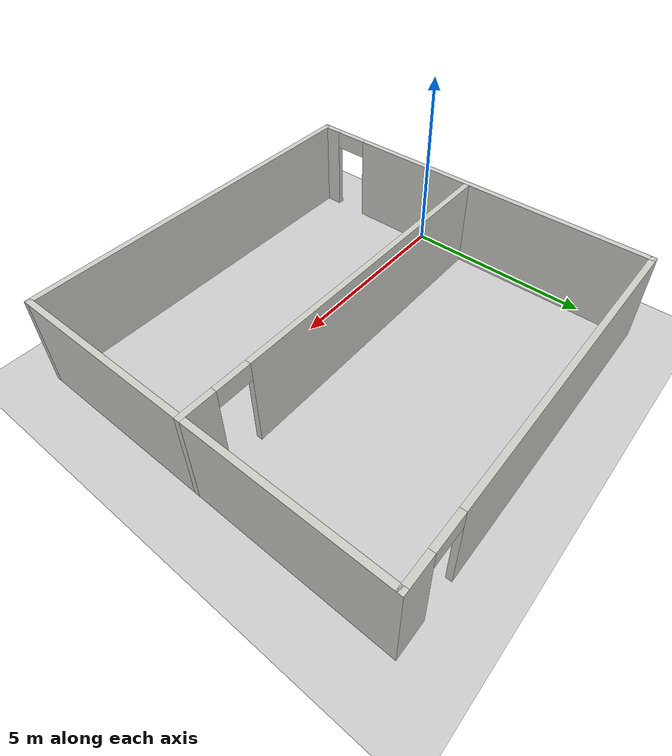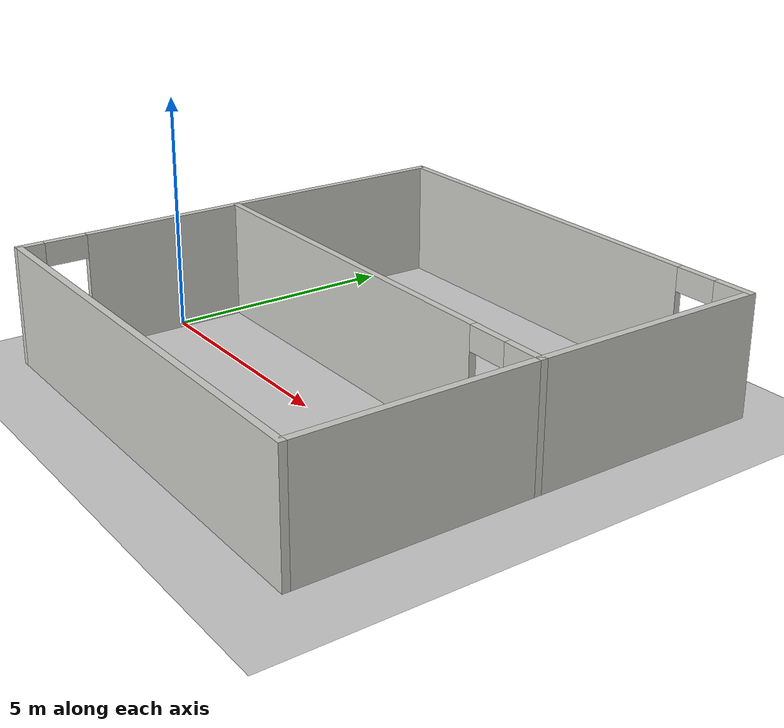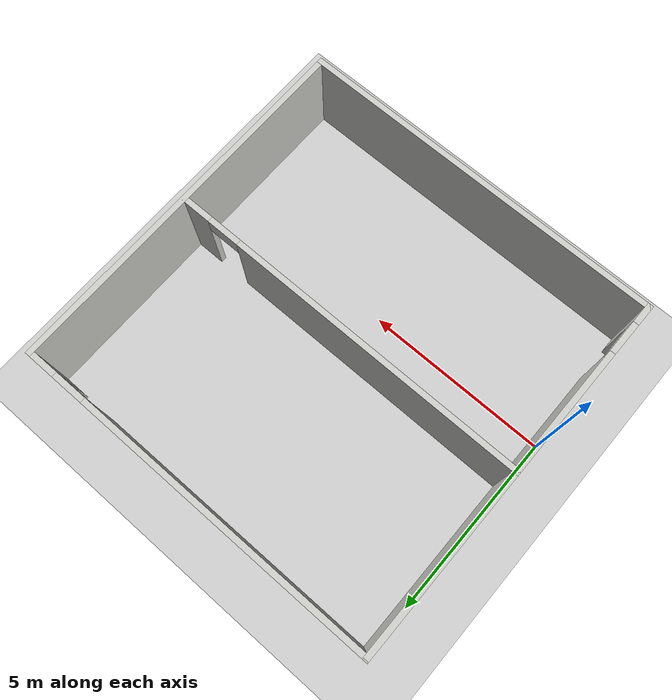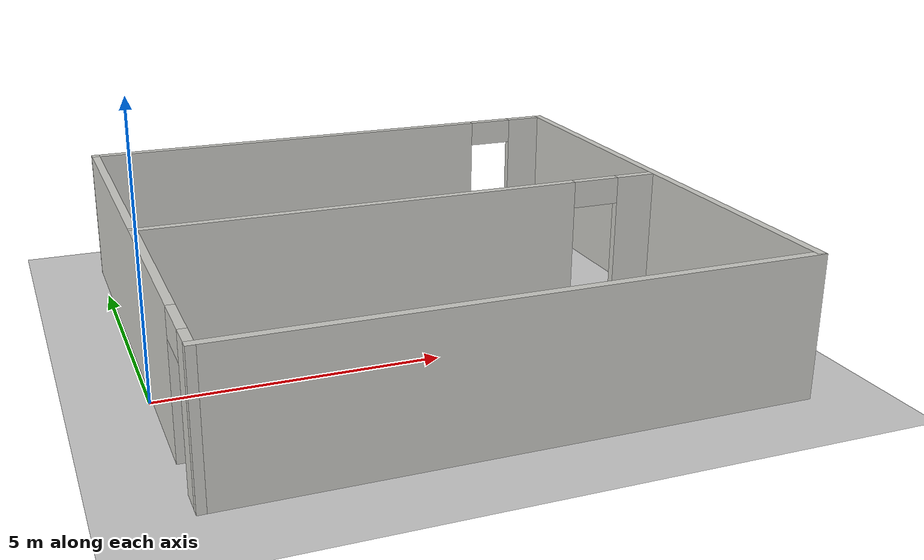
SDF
<sdf version="1.6">
 <world name="default">
  <light name="sun" type="directional">
   <pose>0 0 10 0 -0 0</pose>
   <diffuse>0.8 0.8 0.8 1</diffuse>
   <specular>0.1 0.1 0.1 1</specular>
   <attenuation>
    <range>1000</range>
    <constant>0.9</constant>
    <linear>0.01</linear>
    <quadratic>0.001</quadratic>
   </attenuation>
   <direction>-0.5 0.5 -1</direction>
  </light>
  <model name="ground_plane">
   <static>1</static>
   <link name="link">
    <collision name="collision">
     <geometry><plane><normal>0 0 1</normal><size>100 100</size></plane></geometry>
     <surface><friction><ode><mu>100</mu><mu2>50</mu2></ode></friction></surface>
    </collision>
    <visual name="visual">
     <cast_shadows>0</cast_shadows>
     <geometry><plane><normal>0 0 1</normal><size>100 100</size></plane></geometry>
     <material>
      <script><uri>file://media/materials/scripts/gazebo.material</uri><name>Gazebo/Grey</name></script>
     </material>
    </visual>
   </link>
  </model>
  <gravity>0 0 -9.8</gravity>
  <magnetic_field>6e-06 2.3e-05 -4.2e-05</magnetic_field>
  <atmosphere type="adiabatic"/>
  <physics name="default_physics" default="0" type="ode">
   <max_step_size>0.001</max_step_size>
   <real_time_factor>1</real_time_factor>
   <real_time_update_rate>1000</real_time_update_rate>
  </physics>
  <scene><ambient>0.4 0.4 0.4 1</ambient><background>0.7 0.7 0.7 1</background><shadows>1</shadows></scene>
  <spherical_coordinates>
   <surface_model>EARTH_WGS84</surface_model>
   <latitude_deg>0</latitude_deg>
   <longitude_deg>0</longitude_deg>
   <elevation>0</elevation>
   <heading_deg>0</heading_deg>
  </spherical_coordinates>
  <model name="house0">
   <pose>5.04459 1.40534 0 0 -0 0</pose>
   <link name="Wall_10">
    <pose>0.000433 -0.039574 0 0 -0 0</pose>
    <visual name="Wall_10_Visual_0">
     <pose>-0.904868 0 1.25 0 -0 0</pose>
     <geometry><box><size>8.19026 0.15 2.5</size></box></geometry>
     <material>
      <script><uri>file://media/materials/scripts/gazebo.material</uri><name>Gazebo/CeilingTiled</name></script>
      <ambient>1 1 1 1</ambient>
     </material>
    </visual>
    <collision name="Wall_10_Collision_0">
     <geometry><box><size>8.19026 0.15 2.5</size></box></geometry>
     <pose>-0.904868 0 1.25 0 -0 0</pose>
    </collision>
    <visual name="Wall_10_Visual_1">
     <pose>4.54513 0 1.25 0 -0 0</pose>
     <geometry><box><size>0.909736 0.15 2.5</size></box></geometry>
     <material>
      <script><uri>file://media/materials/scripts/gazebo.material</uri><name>Gazebo/CeilingTiled</name></script>
      <ambient>1 1 1 1</ambient>
     </material>
    </visual>
    <collision name="Wall_10_Collision_1">
     <geometry><box><size>0.909736 0.15 2.5</size></box></geometry>
     <pose>4.54513 0 1.25 0 -0 0</pose>
    </collision>
    <visual name="Wall_10_Visual_2">
     <pose>3.64026 0 2.25 0 -0 0</pose>
     <geometry><box><size>0.9 0.15 0.5</size></box></geometry>
     <material>
      <script><uri>file://media/materials/scripts/gazebo.material</uri><name>Gazebo/CeilingTiled</name></script>
      <ambient>1 1 1 1</ambient>
     </material>
    </visual>
    <collision name="Wall_10_Collision_2">
     <geometry><box><size>0.9 0.15 0.5</size></box></geometry>
     <pose>3.64026 0 2.25 0 -0 0</pose>
    </collision>
   </link>
   <link name="Wall_13">
    <collision name="Wall_13_Collision">
     <geometry><box><size>10 0.15 2.5</size></box></geometry>
     <pose>0 0 1.25 0 -0 0</pose>
    </collision>
    <visual name="Wall_13_Visual">
     <pose>0 0 1.25 0 -0 0</pose>
     <geometry><box><size>10 0.15 2.5</size></box></geometry>
     <material>
      <script><uri>file://media/materials/scripts/gazebo.material</uri><name>Gazebo/CeilingTiled</name></script>
      <ambient>1 1 1 1</ambient>
     </material>
    </visual>
    <pose>4.92457 0.01759 0 0 0 -1.5708</pose>
   </link>
   <link name="Wall_16">
    <collision name="Wall_16_Collision">
     <geometry><box><size>10 0.15 2.5</size></box></geometry>
     <pose>0 0 1.25 0 -0 0</pose>
    </collision>
    <visual name="Wall_16_Visual">
     <pose>0 0 1.25 0 -0 0</pose>
     <geometry><box><size>10 0.15 2.5</size></box></geometry>
     <material>
      <script><uri>file://media/materials/scripts/gazebo.material</uri><name>Gazebo/CeilingTiled</name></script>
      <ambient>1 1 1 1</ambient>
     </material>
    </visual>
    <pose>-0.000432 -4.94259 0 0 -0 0</pose>
   </link>
   <link name="Wall_4">
    <pose>-4.92543 -0.017589 0 0 -0 1.5708</pose>
    <visual name="Wall_4_Visual_0">
     <pose>-4.7087 0 1.25 0 -0 0</pose>
     <geometry><box><size>0.582607 0.15 2.5</size></box></geometry>
     <material>
      <script><uri>file://media/materials/scripts/gazebo.material</uri><name>Gazebo/CeilingTiled</name></script>
      <ambient>1 1 1 1</ambient>
     </material>
    </visual>
    <collision name="Wall_4_Collision_0">
     <geometry><box><size>0.582607 0.15 2.5</size></box></geometry>
     <pose>-4.7087 0 1.25 0 -0 0</pose>
    </collision>
    <visual name="Wall_4_Visual_1">
     <pose>0.741304 0 1.25 0 -0 0</pose>
     <geometry><box><size>8.51739 0.15 2.5</size></box></geometry>
     <material>
      <script><uri>file://media/materials/scripts/gazebo.material</uri><name>Gazebo/CeilingTiled</name></script>
      <ambient>1 1 1 1</ambient>
     </material>
    </visual>
    <collision name="Wall_4_Collision_1">
     <geometry><box><size>8.51739 0.15 2.5</size></box></geometry>
     <pose>0.741304 0 1.25 0 -0 0</pose>
    </collision>
    <visual name="Wall_4_Visual_2">
     <pose>-3.96739 0 2.25 0 -0 0</pose>
     <geometry><box><size>0.9 0.15 0.5</size></box></geometry>
     <material>
      <script><uri>file://media/materials/scripts/gazebo.material</uri><name>Gazebo/CeilingTiled</name></script>
      <ambient>1 1 1 1</ambient>
     </material>
    </visual>
    <collision name="Wall_4_Collision_2">
     <geometry><box><size>0.9 0.15 0.5</size></box></geometry>
     <pose>-3.96739 0 2.25 0 -0 0</pose>
    </collision>
   </link>
   <link name="Wall_6">
    <pose>-0.000432 4.94259 0 0 -0 0</pose>
    <visual name="Wall_6_Visual_0">
     <pose>-0.878186 0 1.25 0 -0 0</pose>
     <geometry><box><size>8.24363 0.15 2.5</size></box></geometry>
     <material>
      <script><uri>file://media/materials/scripts/gazebo.material</uri><name>Gazebo/CeilingTiled</name></script>
      <ambient>1 1 1 1</ambient>
     </material>
    </visual>
    <collision name="Wall_6_Collision_0">
     <geometry><box><size>8.24363 0.15 2.5</size></box></geometry>
     <pose>-0.878186 0 1.25 0 -0 0</pose>
    </collision>
    <visual name="Wall_6_Visual_1">
     <pose>4.57181 0 1.25 0 -0 0</pose>
     <geometry><box><size>0.856372 0.15 2.5</size></box></geometry>
     <material>
      <script><uri>file://media/materials/scripts/gazebo.material</uri><name>Gazebo/CeilingTiled</name></script>
      <ambient>1 1 1 1</ambient>
     </material>
    </visual>
    <collision name="Wall_6_Collision_1">
     <geometry><box><size>0.856372 0.15 2.5</size></box></geometry>
     <pose>4.57181 0 1.25 0 -0 0</pose>
    </collision>
    <visual name="Wall_6_Visual_2">
     <pose>3.69363 0 2.25 0 -0 0</pose>
     <geometry><box><size>0.9 0.15 0.5</size></box></geometry>
     <material>
      <script><uri>file://media/materials/scripts/gazebo.material</uri><name>Gazebo/CeilingTiled</name></script>
      <ambient>1 1 1 1</ambient>
     </material>
    </visual>
    <collision name="Wall_6_Collision_2">
     <geometry><box><size>0.9 0.15 0.5</size></box></geometry>
     <pose>3.69363 0 2.25 0 -0 0</pose>
    </collision>
   </link>
   <static>1</static>
  </model>
 </world>
</sdf>
